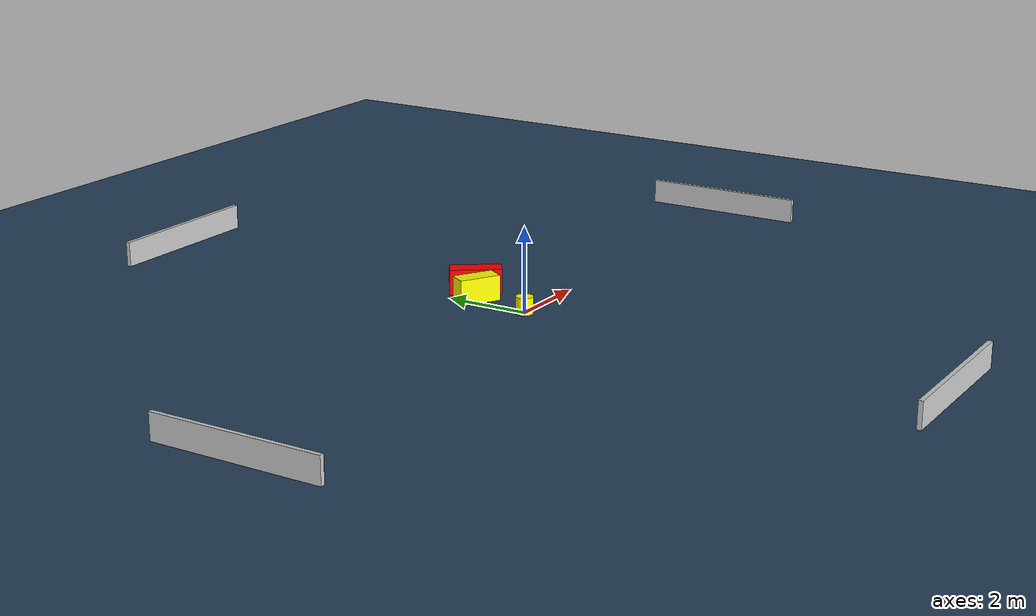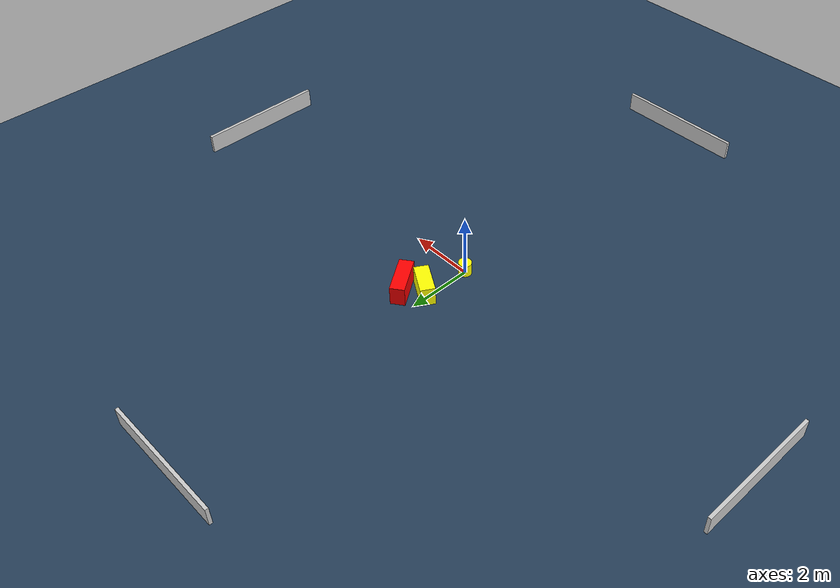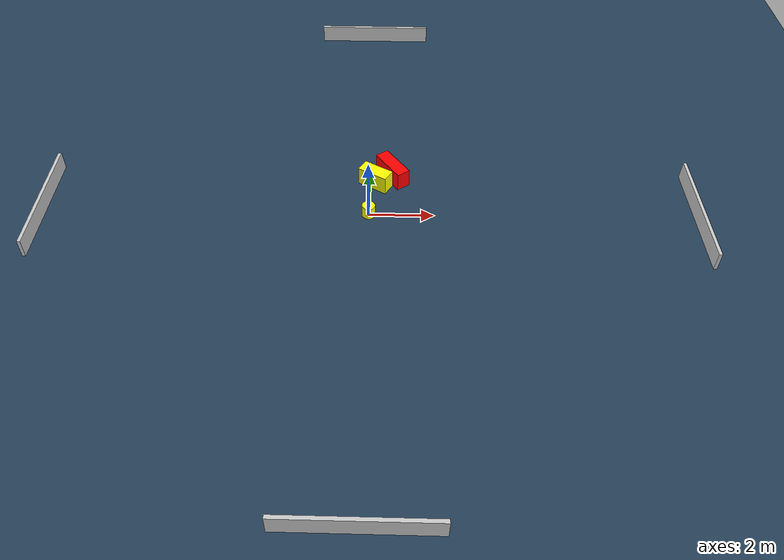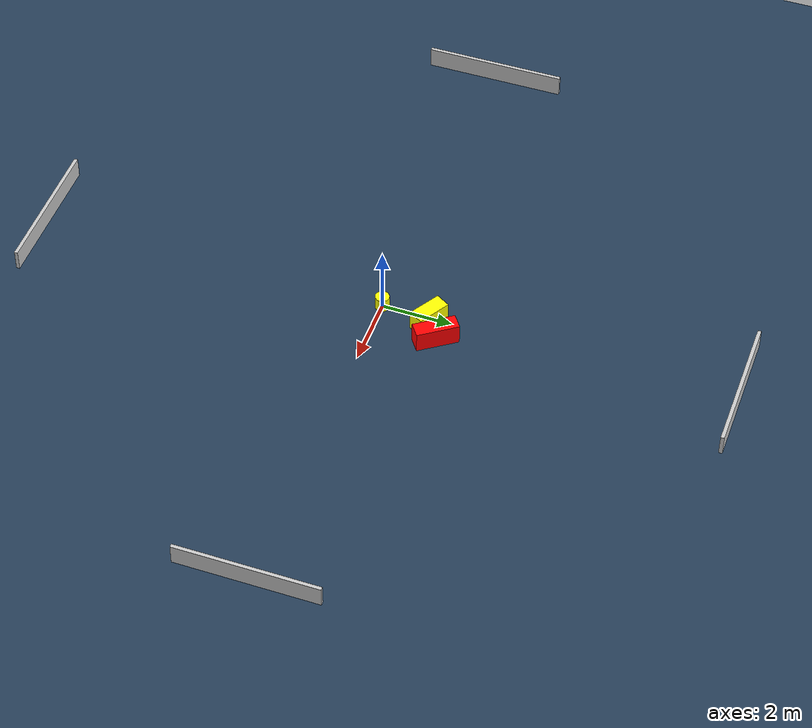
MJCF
<?xml version="1.0" ?>
<mujoco model="generated_environment">
  <option timestep="0.01" integrator="RK4" cone="elliptic"/>
  <default>
    <geom density="1"/>
  </default>
  <asset>
    <texture builtin="gradient" height="3072" name="skybox" rgb1="0.3 0.5 0.7" rgb2="0 0 0" type="skybox" width="512"/>
    <texture builtin="checker" height="300" name="groundplane" rgb1="0.2 0.3 0.4" rgb2="0.1 0.2 0.3" type="2d" width="300"/>
    <material name="groundplane" reflectance="0.2" texrepeat="5 5" texture="groundplane"/>
  </asset>
  <worldbody>
    <light dir="0 0 -1" directional="true" pos="0 0 1.5"/>
    <geom condim="3" friction="0.5 0.005 0.001" material="groundplane" name="floor" pos="0 0 0" size="0 0 0.05" type="plane"/>
    <body name="walls">
      <geom name="wall_1" condim="4" pos="-10.0 0.0 0.3" rgba="0.800000011920929 0.800000011920929 0.800000011920929 1.0" size="0.05 2.0 0.3" type="box"/>
      <geom name="wall_2" condim="4" pos="10.0 0.0 0.3" rgba="0.800000011920929 0.800000011920929 0.800000011920929 1.0" size="0.05 2.0 0.3" type="box"/>
      <geom name="wall_3" condim="4" pos="0.0 -10.0 0.3" rgba="0.800000011920929 0.800000011920929 0.800000011920929 1.0" size="2.0 0.05 0.3" type="box"/>
      <geom name="wall_4" condim="4" pos="0.0 10.0 0.3" rgba="0.800000011920929 0.800000011920929 0.800000011920929 1.0" size="2.0 0.05 0.3" type="box"/>
    </body>
    <body name="robot">
      <joint name="joint_x" type="slide" pos="0 0 0" axis="1 0 0"/>
      <joint name="joint_y" type="slide" pos="0 0 0" axis="0 1 0"/>
      <geom name="robot" type="cylinder" pos="0.0 0.0 0.2" size="0.2 0.2 0.0" mass="5.0" friction="1.0 0.005 0.0001" condim="4" rgba="1.0 1.0 0.0 1.0"/>
    </body>
    <body name="obstacle_1_movable">
      <geom name="obstacle_1_movable" condim="4" pos="0.18517547193947578 1.409178783315237 0.3" euler="0 0 239.2851677932574" friction="0.0 0.005 0.001" rgba="1.0 1.0 0.0 1.0" size="0.22000912387258698 0.49181436640830684 0.3" type="box" mass="0.1"/>
      <joint type="free"/>
    </body>
    <body name="obstacle_2_static">
      <geom name="obstacle_2_static" condim="4" pos="0.7183845479756695 1.7795431536727426 0.3" euler="0 0 305.41730198355145" friction="0.0 0.005 0.001" rgba="1.0 0.0 0.0 1.0" size="0.6034542880124762 0.2183260572260867 0.3" type="box"/>
    </body>
  </worldbody>
  <actuator>
    <motor name="actuator_x" joint="joint_x" gear="1" ctrlrange="-1 1"/>
    <motor name="actuator_y" joint="joint_y" gear="1" ctrlrange="-1 1"/>
  </actuator>
</mujoco>
